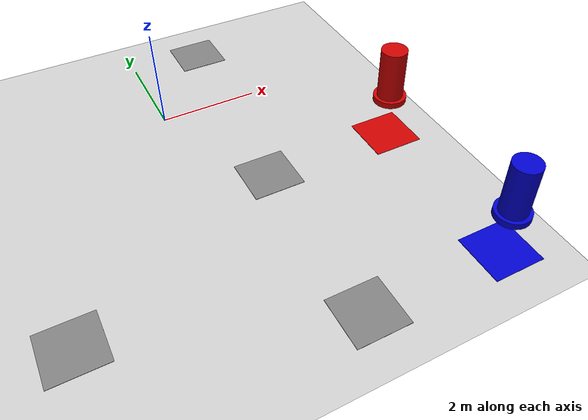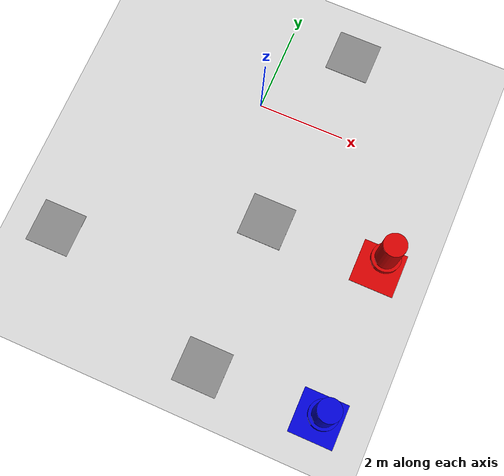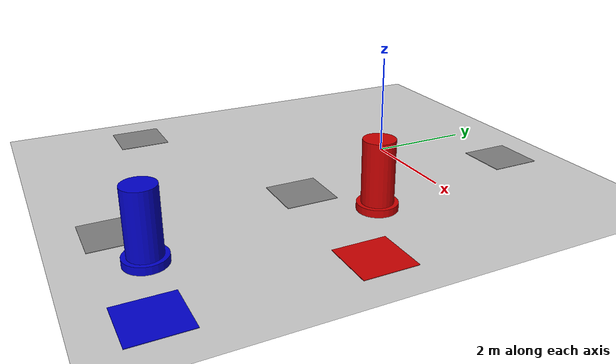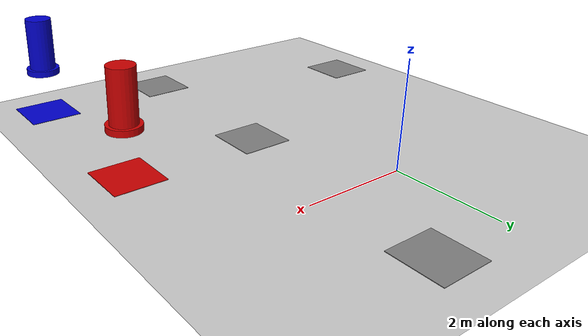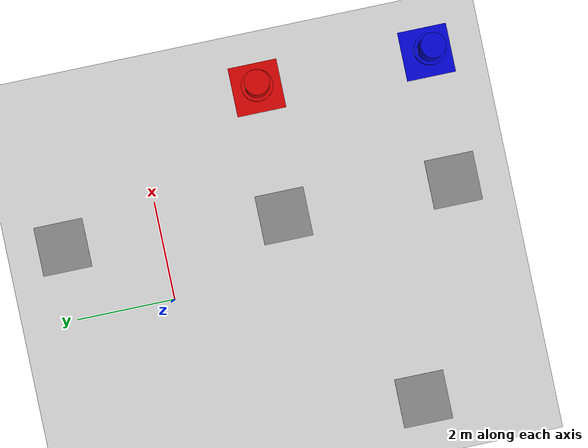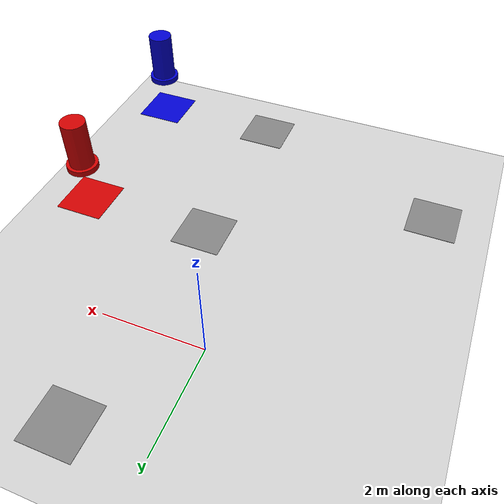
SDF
<sdf version="1.6">
 <world name="default">
  <physics name="2ms" type="ignored">
   <max_step_size>0.002</max_step_size>
   <real_time_factor>1.0</real_time_factor>
  </physics>
  <plugin filename="gz-sim-physics-system" name="gz::sim::systems::Physics"/>
  <plugin filename="gz-sim-user-commands-system" name="gz::sim::systems::UserCommands"/>
  <plugin filename="gz-sim-scene-broadcaster-system" name="gz::sim::systems::SceneBroadcaster"/>
  <plugin filename="gz-sim-imu-system" name="gz::sim::systems::Imu"/>
  <scene><grid>false</grid></scene>
  <light type="directional" name="sun">
   <cast_shadows>false</cast_shadows>
   <pose>0 0 18 0 0 0</pose>
   <diffuse>0.5 0.5 0.5 1</diffuse>
   <specular>0.2 0.2 0.2 1</specular>
   <attenuation>
    <range>80</range>
    <constant>0.01</constant>
    <linear>0.01</linear>
    <quadratic>0.001</quadratic>
   </attenuation>
   <direction>0.1 0.1 -1</direction>
  </light>
  <model name="ground_plane">
   <static>true</static>
   <link name="link">
    <collision name="collision"><geometry><plane><normal>0 0 1</normal></plane></geometry></collision>
    <visual name="visual">
     <geometry><plane><normal>0 0 1</normal><size>100 100</size></plane></geometry>
     <material>
      <ambient>0.8 0.8 0.8 1</ambient>
      <diffuse>0.8 0.8 0.8 1</diffuse>
      <specular>0.8 0.8 0.8 1</specular>
     </material>
    </visual>
   </link>
  </model>
  <model name="red_pipe">
   <static>true</static>
   <pose>3.84 -2.5 0.85 0 0 0</pose>
   <link name="link">
    <visual name="collar">
     <pose>0 0 0.06 0 0 0</pose>
     <geometry><cylinder><radius>0.32</radius><length>0.12</length></cylinder></geometry>
     <material><ambient>0.8 0 0 1</ambient><diffuse>0.8 0 0 1</diffuse></material>
    </visual>
    <visual name="body">
     <pose>0 0 0.62 0 0 0</pose>
     <geometry><cylinder><radius>0.25</radius><length>1.0</length></cylinder></geometry>
     <material><ambient>0.8 0 0 1</ambient><diffuse>0.8 0 0 1</diffuse></material>
    </visual>
    <collision name="collision">
     <pose>0 0 0.56 0 0 0</pose>
     <geometry><cylinder><radius>0.3</radius><length>1.12</length></cylinder></geometry>
    </collision>
   </link>
  </model>
  <model name="red_mat">
   <static>true</static>
   <pose>3.84 -2.5 0.001 0 0 0</pose>
   <link name="link">
    <visual name="visual">
     <geometry><box><size>1.0 1.0 0.01</size></box></geometry>
     <material><ambient>0.8 0 0 1</ambient><diffuse>0.8 0 0 1</diffuse></material>
    </visual>
   </link>
  </model>
  <model name="blue_pipe">
   <static>true</static>
   <pose>3.84 -6.0 0.85 0 0 0</pose>
   <link name="link">
    <visual name="collar">
     <pose>0 0 0.06 0 0 0</pose>
     <geometry><cylinder><radius>0.32</radius><length>0.12</length></cylinder></geometry>
     <material><ambient>0 0 0.8 1</ambient><diffuse>0 0 0.8 1</diffuse></material>
    </visual>
    <visual name="body">
     <pose>0 0 0.62 0 0 0</pose>
     <geometry><cylinder><radius>0.25</radius><length>1.0</length></cylinder></geometry>
     <material><ambient>0 0 0.8 1</ambient><diffuse>0 0 0.8 1</diffuse></material>
    </visual>
    <collision name="collision">
     <pose>0 0 0.56 0 0 0</pose>
     <geometry><cylinder><radius>0.3</radius><length>1.12</length></cylinder></geometry>
    </collision>
   </link>
  </model>
  <model name="blue_mat">
   <static>true</static>
   <pose>3.84 -6.0 0.001 0 0 0</pose>
   <link name="link">
    <visual name="visual">
     <geometry><box><size>1.0 1.0 0.01</size></box></geometry>
     <material><ambient>0 0 0.8 1</ambient><diffuse>0 0 0.8 1</diffuse></material>
    </visual>
   </link>
  </model>
  <model name="delivery_mat_1">
   <static>true</static>
   <pose>1.2 -2.5 0.001 0 0 0</pose>
   <link name="link">
    <visual name="visual">
     <geometry><box><size>1.0 1.0 0.01</size></box></geometry>
     <material><ambient>0.5 0.5 0.5 1</ambient><diffuse>0.5 0.5 0.5 1</diffuse></material>
    </visual>
   </link>
  </model>
  <model name="delivery_mat_2">
   <static>true</static>
   <pose>1.2 -6.0 0.001 0 0 0</pose>
   <link name="link">
    <visual name="visual">
     <geometry><box><size>1.0 1.0 0.01</size></box></geometry>
     <material><ambient>0.5 0.5 0.5 1</ambient><diffuse>0.5 0.5 0.5 1</diffuse></material>
    </visual>
   </link>
  </model>
  <model name="delivery_mat_3">
   <static>true</static>
   <pose>-3.0 -4.5 0.001 0 0 0</pose>
   <link name="link">
    <visual name="visual">
     <geometry><box><size>1.0 1.0 0.01</size></box></geometry>
     <material><ambient>0.5 0.5 0.5 1</ambient><diffuse>0.5 0.5 0.5 1</diffuse></material>
    </visual>
   </link>
  </model>
  <model name="delivery_mat_4">
   <static>true</static>
   <pose>1.5 2.0 0.001 0 0 0</pose>
   <link name="link">
    <visual name="visual">
     <geometry><box><size>1.0 1.0 0.01</size></box></geometry>
     <material><ambient>0.5 0.5 0.5 1</ambient><diffuse>0.5 0.5 0.5 1</diffuse></material>
    </visual>
   </link>
  </model>
 </world>
</sdf>
